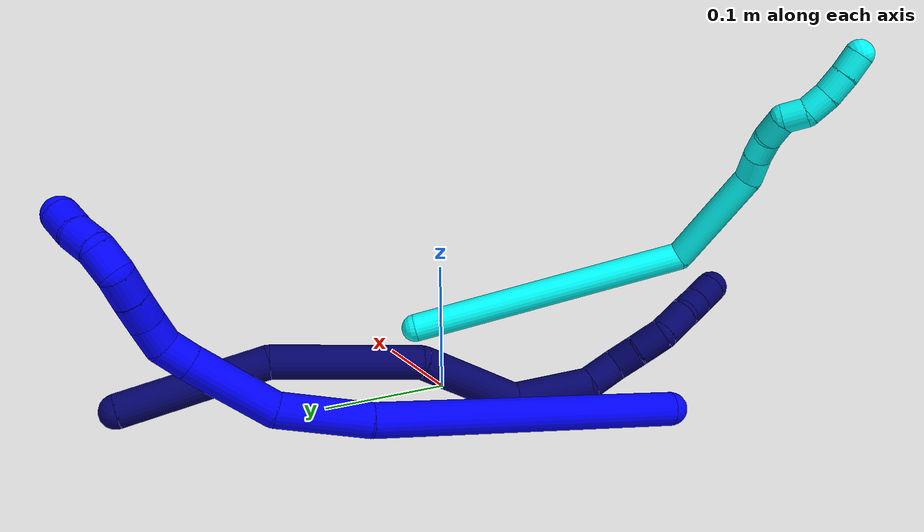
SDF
<sdf version="1.7">
 <world name="default">
  <model name="photoneo_s_sensor">
   <static>1</static>
   <pose>0 0 2 1.57079 1.57079 3.14159</pose>
   <link name="link">
    <inertial><mass>0.1</mass></inertial>
    <sensor name="sensor" type="depth">
     <update_rate>30</update_rate>
     <camera>
      <horizontal_fov>1.22</horizontal_fov>
      <image><width>1920</width><height>1200</height><format>B8G8R8</format></image>
      <clip><near>0.1</near><far>4</far></clip>
      <depth_camera><output>points</output></depth_camera>
     </camera>
     <plugin name="camera_plugin" filename="libgazebo_ros_depth_camera.so">
      <baseline>0.2</baseline>
      <alwaysOn>1</alwaysOn>
      <updateRate>0.0</updateRate>
      <cameraName>camera_ir</cameraName>
      <imageTopicName>/camera/color/image_raw</imageTopicName>
      <cameraInfoTopicName>/camera/color/camera_info</cameraInfoTopicName>
      <depthImageTopicName>/camera/depth/image_raw</depthImageTopicName>
      <depthImageCameraInfoTopicName>/camera/depth/camera_info</depthImageCameraInfoTopicName>
      <pointCloudTopicName>/camera/depth/points</pointCloudTopicName>
      <frameName>fr_optical</frameName>
      <pointCloudCutoff>0.1</pointCloudCutoff>
      <pointCloudCutoffMax>2.0</pointCloudCutoffMax>
      <distortionK1>0</distortionK1>
      <distortionK2>0</distortionK2>
      <distortionK3>0</distortionK3>
      <distortionT1>0</distortionT1>
      <distortionT2>0</distortionT2>
      <CxPrime>0</CxPrime>
      <Cx>0</Cx>
      <Cy>0</Cy>
      <focalLength>0</focalLength>
      <hackBaseline>0</hackBaseline>
     </plugin>
    </sensor>
   </link>
  </model>
  <model name="bin">
   <static>1</static>
   <link name="bottom">
    <collision name="collision-bottom">
     <pose>0 0 -0.01 0 -0 0</pose>
     <geometry><box><size>0.8 0.6 0.02</size></box></geometry>
     <surface>
      <friction><ode><mu>100</mu><mu2>100</mu2></ode></friction>
      <contact><collide_bitmask>65535</collide_bitmask></contact>
     </surface>
    </collision>
   </link>
   <link name="west_wall">
    <collision name="collision-west_wall">
     <pose>-0.41 0 0.1 0 -0 0</pose>
     <geometry><box><size>0.02 0.6 0.2</size></box></geometry>
     <surface>
      <friction><ode><mu>100</mu><mu2>100</mu2></ode></friction>
      <contact><collide_bitmask>65535</collide_bitmask></contact>
     </surface>
    </collision>
   </link>
   <link name="east_wall">
    <collision name="collision-east_wall">
     <pose>0.41 0 0.1 0 -0 0</pose>
     <geometry><box><size>0.02 0.6 0.2</size></box></geometry>
     <surface>
      <friction><ode><mu>100</mu><mu2>100</mu2></ode></friction>
      <contact><collide_bitmask>65535</collide_bitmask></contact>
     </surface>
    </collision>
   </link>
   <link name="south_wall">
    <collision name="collision-south_wall">
     <pose>0 -0.31 0.1 0 -0 0</pose>
     <geometry><box><size>0.8 0.02 0.2</size></box></geometry>
     <surface>
      <friction><ode><mu>100</mu><mu2>100</mu2></ode></friction>
      <contact><collide_bitmask>65535</collide_bitmask></contact>
     </surface>
    </collision>
   </link>
   <link name="north_wall">
    <collision name="collision-north_wall">
     <pose>0 0.31 0.1 0 -0 0</pose>
     <geometry><box><size>0.8 0.02 0.2</size></box></geometry>
     <surface>
      <friction><ode><mu>100</mu><mu2>100</mu2></ode></friction>
      <contact><collide_bitmask>65535</collide_bitmask></contact>
     </surface>
    </collision>
   </link>
  </model>
  <model name="1">
   <static>0</static>
   <link name="1">
    <collision name="collision-cylinder-e_1_1_4">
     <pose>0.008183 0.075873 0.084236 -0.733217 0.072059 -0.027678</pose>
     <geometry><cylinder><radius>0.0125</radius><length>0.227327</length></cylinder></geometry>
     <surface>
      <friction><ode><mu>1.16</mu><mu2>1.16</mu2><slip1>0</slip1><slip2>0</slip2></ode></friction>
      <contact><ode><kp>1e+06</kp><kd>1</kd><max_vel>0</max_vel><min_depth>0.001</min_depth></ode></contact>
     </surface>
    </collision>
    <visual name="visual-cylinder-e_1_1_4">
     <pose>0.008183 0.075873 0.084236 -0.733217 0.072059 -0.027678</pose>
     <geometry><cylinder><radius>0.0125</radius><length>0.227327</length></cylinder></geometry>
     <material><ambient>0 0 1 1</ambient></material>
    </visual>
    <collision name="collision-cylinder-e_2_4_5">
     <pose>0.023645 0.172457 0.193412 -0.692995 0.22086 -0.080028</pose>
     <geometry><cylinder><radius>0.0125</radius><length>0.066451</length></cylinder></geometry>
     <surface>
      <friction><ode><mu>1.16</mu><mu2>1.16</mu2><slip1>0</slip1><slip2>0</slip2></ode></friction>
      <contact><ode><kp>1e+06</kp><kd>1</kd><max_vel>0</max_vel><min_depth>0.001</min_depth></ode></contact>
     </surface>
    </collision>
    <visual name="visual-cylinder-e_2_4_5">
     <pose>0.023645 0.172457 0.193412 -0.692995 0.22086 -0.080028</pose>
     <geometry><cylinder><radius>0.0125</radius><length>0.066451</length></cylinder></geometry>
     <material><ambient>0 0 1 1</ambient></material>
    </visual>
    <collision name="collision-cylinder-e_3_5_6">
     <pose>0.044425 0.202302 0.246713 -0.311606 0.425449 -0.067828</pose>
     <geometry><cylinder><radius>0.0125</radius><length>0.065422</length></cylinder></geometry>
     <surface>
      <friction><ode><mu>1.16</mu><mu2>1.16</mu2><slip1>0</slip1><slip2>0</slip2></ode></friction>
      <contact><ode><kp>1e+06</kp><kd>1</kd><max_vel>0</max_vel><min_depth>0.001</min_depth></ode></contact>
     </surface>
    </collision>
    <visual name="visual-cylinder-e_3_5_6">
     <pose>0.044425 0.202302 0.246713 -0.311606 0.425449 -0.067828</pose>
     <geometry><cylinder><radius>0.0125</radius><length>0.065422</length></cylinder></geometry>
     <material><ambient>0 0 1 1</ambient></material>
    </visual>
    <collision name="collision-cylinder-e_4_6_7">
     <pose>0.062314 0.213725 0.284144 -0.247089 0.43858 -0.055338</pose>
     <geometry><cylinder><radius>0.0125</radius><length>0.020666</length></cylinder></geometry>
     <surface>
      <friction><ode><mu>1.16</mu><mu2>1.16</mu2><slip1>0</slip1><slip2>0</slip2></ode></friction>
      <contact><ode><kp>1e+06</kp><kd>1</kd><max_vel>0</max_vel><min_depth>0.001</min_depth></ode></contact>
     </surface>
    </collision>
    <visual name="visual-cylinder-e_4_6_7">
     <pose>0.062314 0.213725 0.284144 -0.247089 0.43858 -0.055338</pose>
     <geometry><cylinder><radius>0.0125</radius><length>0.020666</length></cylinder></geometry>
     <material><ambient>0 0 1 1</ambient></material>
    </visual>
    <collision name="collision-cylinder-e_5_7_8">
     <pose>0.070782 0.213727 0.302064 0.252811 0.4199 0.054147</pose>
     <geometry><cylinder><radius>0.0125</radius><length>0.020018</length></cylinder></geometry>
     <surface>
      <friction><ode><mu>1.16</mu><mu2>1.16</mu2><slip1>0</slip1><slip2>0</slip2></ode></friction>
      <contact><ode><kp>1e+06</kp><kd>1</kd><max_vel>0</max_vel><min_depth>0.001</min_depth></ode></contact>
     </surface>
    </collision>
    <visual name="visual-cylinder-e_5_7_8">
     <pose>0.070782 0.213727 0.302064 0.252811 0.4199 0.054147</pose>
     <geometry><cylinder><radius>0.0125</radius><length>0.020018</length></cylinder></geometry>
     <material><ambient>0 0 1 1</ambient></material>
    </visual>
    <collision name="collision-cylinder-e_6_8_9">
     <pose>0.077902 0.208444 0.320002 0.318514 0.307542 0.049779</pose>
     <geometry><cylinder><radius>0.0125</radius><length>0.020085</length></cylinder></geometry>
     <surface>
      <friction><ode><mu>1.16</mu><mu2>1.16</mu2><slip1>0</slip1><slip2>0</slip2></ode></friction>
      <contact><ode><kp>1e+06</kp><kd>1</kd><max_vel>0</max_vel><min_depth>0.001</min_depth></ode></contact>
     </surface>
    </collision>
    <visual name="visual-cylinder-e_6_8_9">
     <pose>0.077902 0.208444 0.320002 0.318514 0.307542 0.049779</pose>
     <geometry><cylinder><radius>0.0125</radius><length>0.020085</length></cylinder></geometry>
     <material><ambient>0 0 1 1</ambient></material>
    </visual>
    <collision name="collision-cylinder-e_7_9_10">
     <pose>0.084351 0.202309 0.337958 0.340158 0.347719 0.060307</pose>
     <geometry><cylinder><radius>0.0125</radius><length>0.020006</length></cylinder></geometry>
     <surface>
      <friction><ode><mu>1.16</mu><mu2>1.16</mu2><slip1>0</slip1><slip2>0</slip2></ode></friction>
      <contact><ode><kp>1e+06</kp><kd>1</kd><max_vel>0</max_vel><min_depth>0.001</min_depth></ode></contact>
     </surface>
    </collision>
    <visual name="visual-cylinder-e_7_9_10">
     <pose>0.084351 0.202309 0.337958 0.340158 0.347719 0.060307</pose>
     <geometry><cylinder><radius>0.0125</radius><length>0.020006</length></cylinder></geometry>
     <material><ambient>0 0 1 1</ambient></material>
    </visual>
    <collision name="collision-cylinder-e_8_10_11">
     <pose>0.095173 0.199823 0.353508 -0.097175 0.834697 -0.043114</pose>
     <geometry><cylinder><radius>0.0125</radius><length>0.020007</length></cylinder></geometry>
     <surface>
      <friction><ode><mu>1.16</mu><mu2>1.16</mu2><slip1>0</slip1><slip2>0</slip2></ode></friction>
      <contact><ode><kp>1e+06</kp><kd>1</kd><max_vel>0</max_vel><min_depth>0.001</min_depth></ode></contact>
     </surface>
    </collision>
    <visual name="visual-cylinder-e_8_10_11">
     <pose>0.095173 0.199823 0.353508 -0.097175 0.834697 -0.043114</pose>
     <geometry><cylinder><radius>0.0125</radius><length>0.020007</length></cylinder></geometry>
     <material><ambient>0 0 1 1</ambient></material>
    </visual>
    <collision name="collision-cylinder-e_9_11_12">
     <pose>0.110836 0.204952 0.363649 -0.91335 0.96976 -0.50656</pose>
     <geometry><cylinder><radius>0.0125</radius><length>0.020003</length></cylinder></geometry>
     <surface>
      <friction><ode><mu>1.16</mu><mu2>1.16</mu2><slip1>0</slip1><slip2>0</slip2></ode></friction>
      <contact><ode><kp>1e+06</kp><kd>1</kd><max_vel>0</max_vel><min_depth>0.001</min_depth></ode></contact>
     </surface>
    </collision>
    <visual name="visual-cylinder-e_9_11_12">
     <pose>0.110836 0.204952 0.363649 -0.91335 0.96976 -0.50656</pose>
     <geometry><cylinder><radius>0.0125</radius><length>0.020003</length></cylinder></geometry>
     <material><ambient>0 0 1 1</ambient></material>
    </visual>
    <collision name="collision-cylinder-e_10_12_2">
     <pose>0.128168 0.213078 0.369181 -1.05378 1.13782 -0.712255</pose>
     <geometry><cylinder><radius>0.0125</radius><length>0.020014</length></cylinder></geometry>
     <surface>
      <friction><ode><mu>1.16</mu><mu2>1.16</mu2><slip1>0</slip1><slip2>0</slip2></ode></friction>
      <contact><ode><kp>1e+06</kp><kd>1</kd><max_vel>0</max_vel><min_depth>0.001</min_depth></ode></contact>
     </surface>
    </collision>
    <visual name="visual-cylinder-e_10_12_2">
     <pose>0.128168 0.213078 0.369181 -1.05378 1.13782 -0.712255</pose>
     <geometry><cylinder><radius>0.0125</radius><length>0.020014</length></cylinder></geometry>
     <material><ambient>0 0 1 1</ambient></material>
    </visual>
    <collision name="collision-sphere-2">
     <pose>0.137252 0.216728 0.371256 0 -0 0</pose>
     <geometry><sphere><radius>0.0125</radius></sphere></geometry>
     <surface>
      <friction><ode><mu>1.16</mu><mu2>1.16</mu2><slip1>0</slip1><slip2>0</slip2></ode></friction>
      <contact><ode><kp>1e+06</kp><kd>1</kd><max_vel>0</max_vel><min_depth>0.001</min_depth></ode></contact>
     </surface>
    </collision>
    <visual name="visual-sphere-2">
     <pose>0.137252 0.216728 0.371256 0 -0 0</pose>
     <geometry><sphere><radius>0.0125</radius></sphere></geometry>
     <material><ambient>0 0 1 1</ambient></material>
    </visual>
    <collision name="collision-sphere-12">
     <pose>0.119085 0.209429 0.367106 0 -0 0</pose>
     <geometry><sphere><radius>0.0125</radius></sphere></geometry>
     <surface>
      <friction><ode><mu>1.16</mu><mu2>1.16</mu2><slip1>0</slip1><slip2>0</slip2></ode></friction>
      <contact><ode><kp>1e+06</kp><kd>1</kd><max_vel>0</max_vel><min_depth>0.001</min_depth></ode></contact>
     </surface>
    </collision>
    <visual name="visual-sphere-12">
     <pose>0.119085 0.209429 0.367106 0 -0 0</pose>
     <geometry><sphere><radius>0.0125</radius></sphere></geometry>
     <material><ambient>0 0 1 1</ambient></material>
    </visual>
    <collision name="collision-sphere-11">
     <pose>0.102587 0.200475 0.360193 0 -0 0</pose>
     <geometry><sphere><radius>0.0125</radius></sphere></geometry>
     <surface>
      <friction><ode><mu>1.16</mu><mu2>1.16</mu2><slip1>0</slip1><slip2>0</slip2></ode></friction>
      <contact><ode><kp>1e+06</kp><kd>1</kd><max_vel>0</max_vel><min_depth>0.001</min_depth></ode></contact>
     </surface>
    </collision>
    <visual name="visual-sphere-11">
     <pose>0.102587 0.200475 0.360193 0 -0 0</pose>
     <geometry><sphere><radius>0.0125</radius></sphere></geometry>
     <material><ambient>0 0 1 1</ambient></material>
    </visual>
    <collision name="collision-sphere-10">
     <pose>0.087759 0.199171 0.346823 0 -0 0</pose>
     <geometry><sphere><radius>0.0125</radius></sphere></geometry>
     <surface>
      <friction><ode><mu>1.16</mu><mu2>1.16</mu2><slip1>0</slip1><slip2>0</slip2></ode></friction>
      <contact><ode><kp>1e+06</kp><kd>1</kd><max_vel>0</max_vel><min_depth>0.001</min_depth></ode></contact>
     </surface>
    </collision>
    <visual name="visual-sphere-10">
     <pose>0.087759 0.199171 0.346823 0 -0 0</pose>
     <geometry><sphere><radius>0.0125</radius></sphere></geometry>
     <material><ambient>0 0 1 1</ambient></material>
    </visual>
    <collision name="collision-sphere-9">
     <pose>0.080942 0.205447 0.329092 0 -0 0</pose>
     <geometry><sphere><radius>0.0125</radius></sphere></geometry>
     <surface>
      <friction><ode><mu>1.16</mu><mu2>1.16</mu2><slip1>0</slip1><slip2>0</slip2></ode></friction>
      <contact><ode><kp>1e+06</kp><kd>1</kd><max_vel>0</max_vel><min_depth>0.001</min_depth></ode></contact>
     </surface>
    </collision>
    <visual name="visual-sphere-9">
     <pose>0.080942 0.205447 0.329092 0 -0 0</pose>
     <geometry><sphere><radius>0.0125</radius></sphere></geometry>
     <material><ambient>0 0 1 1</ambient></material>
    </visual>
    <collision name="collision-sphere-4">
     <pose>0.016367 0.151747 0.168471 0 -0 0</pose>
     <geometry><sphere><radius>0.0125</radius></sphere></geometry>
     <surface>
      <friction><ode><mu>1.16</mu><mu2>1.16</mu2><slip1>0</slip1><slip2>0</slip2></ode></friction>
      <contact><ode><kp>1e+06</kp><kd>1</kd><max_vel>0</max_vel><min_depth>0.001</min_depth></ode></contact>
     </surface>
    </collision>
    <visual name="visual-sphere-4">
     <pose>0.016367 0.151747 0.168471 0 -0 0</pose>
     <geometry><sphere><radius>0.0125</radius></sphere></geometry>
     <material><ambient>0 0 1 1</ambient></material>
    </visual>
    <collision name="collision-sphere-1">
     <geometry><sphere><radius>0.0125</radius></sphere></geometry>
     <surface>
      <friction><ode><mu>1.16</mu><mu2>1.16</mu2><slip1>0</slip1><slip2>0</slip2></ode></friction>
      <contact><ode><kp>1e+06</kp><kd>1</kd><max_vel>0</max_vel><min_depth>0.001</min_depth></ode></contact>
     </surface>
    </collision>
    <visual name="visual-sphere-1">
     <geometry><sphere><radius>0.0125</radius></sphere></geometry>
     <material><ambient>0 0 1 1</ambient></material>
    </visual>
    <collision name="collision-sphere-8">
     <pose>0.074862 0.211441 0.310913 0 -0 0</pose>
     <geometry><sphere><radius>0.0125</radius></sphere></geometry>
     <surface>
      <friction><ode><mu>1.16</mu><mu2>1.16</mu2><slip1>0</slip1><slip2>0</slip2></ode></friction>
      <contact><ode><kp>1e+06</kp><kd>1</kd><max_vel>0</max_vel><min_depth>0.001</min_depth></ode></contact>
     </surface>
    </collision>
    <visual name="visual-sphere-8">
     <pose>0.074862 0.211441 0.310913 0 -0 0</pose>
     <geometry><sphere><radius>0.0125</radius></sphere></geometry>
     <material><ambient>0 0 1 1</ambient></material>
    </visual>
    <collision name="collision-sphere-5">
     <pose>0.030924 0.193168 0.218353 0 -0 0</pose>
     <geometry><sphere><radius>0.0125</radius></sphere></geometry>
     <surface>
      <friction><ode><mu>1.16</mu><mu2>1.16</mu2><slip1>0</slip1><slip2>0</slip2></ode></friction>
      <contact><ode><kp>1e+06</kp><kd>1</kd><max_vel>0</max_vel><min_depth>0.001</min_depth></ode></contact>
     </surface>
    </collision>
    <visual name="visual-sphere-5">
     <pose>0.030924 0.193168 0.218353 0 -0 0</pose>
     <geometry><sphere><radius>0.0125</radius></sphere></geometry>
     <material><ambient>0 0 1 1</ambient></material>
    </visual>
    <collision name="collision-sphere-6">
     <pose>0.057926 0.211437 0.275073 0 -0 0</pose>
     <geometry><sphere><radius>0.0125</radius></sphere></geometry>
     <surface>
      <friction><ode><mu>1.16</mu><mu2>1.16</mu2><slip1>0</slip1><slip2>0</slip2></ode></friction>
      <contact><ode><kp>1e+06</kp><kd>1</kd><max_vel>0</max_vel><min_depth>0.001</min_depth></ode></contact>
     </surface>
    </collision>
    <visual name="visual-sphere-6">
     <pose>0.057926 0.211437 0.275073 0 -0 0</pose>
     <geometry><sphere><radius>0.0125</radius></sphere></geometry>
     <material><ambient>0 0 1 1</ambient></material>
    </visual>
    <collision name="collision-sphere-7">
     <pose>0.066702 0.216013 0.293215 0 -0 0</pose>
     <geometry><sphere><radius>0.0125</radius></sphere></geometry>
     <surface>
      <friction><ode><mu>1.16</mu><mu2>1.16</mu2><slip1>0</slip1><slip2>0</slip2></ode></friction>
      <contact><ode><kp>1e+06</kp><kd>1</kd><max_vel>0</max_vel><min_depth>0.001</min_depth></ode></contact>
     </surface>
    </collision>
    <visual name="visual-sphere-7">
     <pose>0.066702 0.216013 0.293215 0 -0 0</pose>
     <geometry><sphere><radius>0.0125</radius></sphere></geometry>
     <material><ambient>0 0 1 1</ambient></material>
    </visual>
    <inertial>
     <pose>0.037963 0.142469 0.18997 0 -0 0</pose>
     <mass>0.5</mass>
     <inertia>
      <ixx>0.001021</ixx>
      <ixy>0</ixy>
      <ixz>0</ixz>
      <iyy>0.000776</iyy>
      <iyz>0</iyz>
      <izz>-0.000748</izz>
     </inertia>
    </inertial>
   </link>
   <pose>-0.152555 -0.115371 0.01149 -0.778622 -0.600688 -0.158133</pose>
  </model>
  <model name="3">
   <static>0</static>
   <link name="3">
    <collision name="collision-cylinder-e_1_1_4">
     <pose>-0.005545 0.000833 0.124143 -0.006708 -0.044636 0.00015</pose>
     <geometry><cylinder><radius>0.0125</radius><length>0.248539</length></cylinder></geometry>
     <surface>
      <friction><ode><mu>1.16</mu><mu2>1.16</mu2><slip1>0</slip1><slip2>0</slip2></ode></friction>
      <contact><ode><kp>1e+06</kp><kd>1</kd><max_vel>0</max_vel><min_depth>0.001</min_depth></ode></contact>
     </surface>
    </collision>
    <visual name="visual-cylinder-e_1_1_4">
     <pose>-0.005545 0.000833 0.124143 -0.006708 -0.044636 0.00015</pose>
     <geometry><cylinder><radius>0.0125</radius><length>0.248539</length></cylinder></geometry>
     <material><ambient>0.003922 1 0.996078 1</ambient></material>
    </visual>
    <collision name="collision-cylinder-e_2_4_5">
     <pose>-0.018086 -0.031378 0.282933 0.761704 -0.145101 -0.058184</pose>
     <geometry><cylinder><radius>0.0125</radius><length>0.096773</length></cylinder></geometry>
     <surface>
      <friction><ode><mu>1.16</mu><mu2>1.16</mu2><slip1>0</slip1><slip2>0</slip2></ode></friction>
      <contact><ode><kp>1e+06</kp><kd>1</kd><max_vel>0</max_vel><min_depth>0.001</min_depth></ode></contact>
     </surface>
    </collision>
    <visual name="visual-cylinder-e_2_4_5">
     <pose>-0.018086 -0.031378 0.282933 0.761704 -0.145101 -0.058184</pose>
     <geometry><cylinder><radius>0.0125</radius><length>0.096773</length></cylinder></geometry>
     <material><ambient>0.003922 1 0.996078 1</ambient></material>
    </visual>
    <collision name="collision-cylinder-e_3_5_6">
     <pose>-0.026798 -0.075691 0.322273 1.17625 -0.139624 -0.093191</pose>
     <geometry><cylinder><radius>0.0125</radius><length>0.024656</length></cylinder></geometry>
     <surface>
      <friction><ode><mu>1.16</mu><mu2>1.16</mu2><slip1>0</slip1><slip2>0</slip2></ode></friction>
      <contact><ode><kp>1e+06</kp><kd>1</kd><max_vel>0</max_vel><min_depth>0.001</min_depth></ode></contact>
     </surface>
    </collision>
    <visual name="visual-cylinder-e_3_5_6">
     <pose>-0.026798 -0.075691 0.322273 1.17625 -0.139624 -0.093191</pose>
     <geometry><cylinder><radius>0.0125</radius><length>0.024656</length></cylinder></geometry>
     <material><ambient>0.003922 1 0.996078 1</ambient></material>
    </visual>
    <collision name="collision-cylinder-e_4_6_7">
     <pose>-0.027043 -0.098331 0.330921 1.23601 0.121561 0.08647</pose>
     <geometry><cylinder><radius>0.0125</radius><length>0.024256</length></cylinder></geometry>
     <surface>
      <friction><ode><mu>1.16</mu><mu2>1.16</mu2><slip1>0</slip1><slip2>0</slip2></ode></friction>
      <contact><ode><kp>1e+06</kp><kd>1</kd><max_vel>0</max_vel><min_depth>0.001</min_depth></ode></contact>
     </surface>
    </collision>
    <visual name="visual-cylinder-e_4_6_7">
     <pose>-0.027043 -0.098331 0.330921 1.23601 0.121561 0.08647</pose>
     <geometry><cylinder><radius>0.0125</radius><length>0.024256</length></cylinder></geometry>
     <material><ambient>0.003922 1 0.996078 1</ambient></material>
    </visual>
    <collision name="collision-cylinder-e_5_7_8">
     <pose>-0.02463 -0.11956 0.341117 1.00643 0.080607 0.04439</pose>
     <geometry><cylinder><radius>0.0125</radius><length>0.023412</length></cylinder></geometry>
     <surface>
      <friction><ode><mu>1.16</mu><mu2>1.16</mu2><slip1>0</slip1><slip2>0</slip2></ode></friction>
      <contact><ode><kp>1e+06</kp><kd>1</kd><max_vel>0</max_vel><min_depth>0.001</min_depth></ode></contact>
     </surface>
    </collision>
    <visual name="visual-cylinder-e_5_7_8">
     <pose>-0.02463 -0.11956 0.341117 1.00643 0.080607 0.04439</pose>
     <geometry><cylinder><radius>0.0125</radius><length>0.023412</length></cylinder></geometry>
     <material><ambient>0.003922 1 0.996078 1</ambient></material>
    </visual>
    <collision name="collision-cylinder-e_6_8_9">
     <pose>-0.021752 -0.131891 0.356952 0.252169 0.19291 0.024528</pose>
     <geometry><cylinder><radius>0.0125</radius><length>0.020189</length></cylinder></geometry>
     <surface>
      <friction><ode><mu>1.16</mu><mu2>1.16</mu2><slip1>0</slip1><slip2>0</slip2></ode></friction>
      <contact><ode><kp>1e+06</kp><kd>1</kd><max_vel>0</max_vel><min_depth>0.001</min_depth></ode></contact>
     </surface>
    </collision>
    <visual name="visual-cylinder-e_6_8_9">
     <pose>-0.021752 -0.131891 0.356952 0.252169 0.19291 0.024528</pose>
     <geometry><cylinder><radius>0.0125</radius><length>0.020189</length></cylinder></geometry>
     <material><ambient>0.003922 1 0.996078 1</ambient></material>
    </visual>
    <collision name="collision-cylinder-e_7_9_10">
     <pose>-0.021934 -0.139175 0.375521 0.492141 -0.205007 -0.051659</pose>
     <geometry><cylinder><radius>0.0125</radius><length>0.020803</length></cylinder></geometry>
     <surface>
      <friction><ode><mu>1.16</mu><mu2>1.16</mu2><slip1>0</slip1><slip2>0</slip2></ode></friction>
      <contact><ode><kp>1e+06</kp><kd>1</kd><max_vel>0</max_vel><min_depth>0.001</min_depth></ode></contact>
     </surface>
    </collision>
    <visual name="visual-cylinder-e_7_9_10">
     <pose>-0.021934 -0.139175 0.375521 0.492141 -0.205007 -0.051659</pose>
     <geometry><cylinder><radius>0.0125</radius><length>0.020803</length></cylinder></geometry>
     <material><ambient>0.003922 1 0.996078 1</ambient></material>
    </visual>
    <collision name="collision-cylinder-e_8_10_11">
     <pose>-0.027076 -0.150206 0.392619 0.653467 -0.287368 -0.09798</pose>
     <geometry><cylinder><radius>0.0125</radius><length>0.021335</length></cylinder></geometry>
     <surface>
      <friction><ode><mu>1.16</mu><mu2>1.16</mu2><slip1>0</slip1><slip2>0</slip2></ode></friction>
      <contact><ode><kp>1e+06</kp><kd>1</kd><max_vel>0</max_vel><min_depth>0.001</min_depth></ode></contact>
     </surface>
    </collision>
    <visual name="visual-cylinder-e_8_10_11">
     <pose>-0.027076 -0.150206 0.392619 0.653467 -0.287368 -0.09798</pose>
     <geometry><cylinder><radius>0.0125</radius><length>0.021335</length></cylinder></geometry>
     <material><ambient>0.003922 1 0.996078 1</ambient></material>
    </visual>
    <collision name="collision-cylinder-e_9_11_2">
     <pose>-0.033681 -0.162456 0.407895 0.700488 -0.365638 -0.134873</pose>
     <geometry><cylinder><radius>0.0125</radius><length>0.020037</length></cylinder></geometry>
     <surface>
      <friction><ode><mu>1.16</mu><mu2>1.16</mu2><slip1>0</slip1><slip2>0</slip2></ode></friction>
      <contact><ode><kp>1e+06</kp><kd>1</kd><max_vel>0</max_vel><min_depth>0.001</min_depth></ode></contact>
     </surface>
    </collision>
    <visual name="visual-cylinder-e_9_11_2">
     <pose>-0.033681 -0.162456 0.407895 0.700488 -0.365638 -0.134873</pose>
     <geometry><cylinder><radius>0.0125</radius><length>0.020037</length></cylinder></geometry>
     <material><ambient>0.003922 1 0.996078 1</ambient></material>
    </visual>
    <collision name="collision-sphere-2">
     <pose>-0.037263 -0.168487 0.415048 0 -0 0</pose>
     <geometry><sphere><radius>0.0125</radius></sphere></geometry>
     <surface>
      <friction><ode><mu>1.16</mu><mu2>1.16</mu2><slip1>0</slip1><slip2>0</slip2></ode></friction>
      <contact><ode><kp>1e+06</kp><kd>1</kd><max_vel>0</max_vel><min_depth>0.001</min_depth></ode></contact>
     </surface>
    </collision>
    <visual name="visual-sphere-2">
     <pose>-0.037263 -0.168487 0.415048 0 -0 0</pose>
     <geometry><sphere><radius>0.0125</radius></sphere></geometry>
     <material><ambient>0.003922 1 0.996078 1</ambient></material>
    </visual>
    <collision name="collision-sphere-11">
     <pose>-0.030099 -0.156426 0.400742 0 -0 0</pose>
     <geometry><sphere><radius>0.0125</radius></sphere></geometry>
     <surface>
      <friction><ode><mu>1.16</mu><mu2>1.16</mu2><slip1>0</slip1><slip2>0</slip2></ode></friction>
      <contact><ode><kp>1e+06</kp><kd>1</kd><max_vel>0</max_vel><min_depth>0.001</min_depth></ode></contact>
     </surface>
    </collision>
    <visual name="visual-sphere-11">
     <pose>-0.030099 -0.156426 0.400742 0 -0 0</pose>
     <geometry><sphere><radius>0.0125</radius></sphere></geometry>
     <material><ambient>0.003922 1 0.996078 1</ambient></material>
    </visual>
    <collision name="collision-sphere-10">
     <pose>-0.024052 -0.143987 0.384497 0 -0 0</pose>
     <geometry><sphere><radius>0.0125</radius></sphere></geometry>
     <surface>
      <friction><ode><mu>1.16</mu><mu2>1.16</mu2><slip1>0</slip1><slip2>0</slip2></ode></friction>
      <contact><ode><kp>1e+06</kp><kd>1</kd><max_vel>0</max_vel><min_depth>0.001</min_depth></ode></contact>
     </surface>
    </collision>
    <visual name="visual-sphere-10">
     <pose>-0.024052 -0.143987 0.384497 0 -0 0</pose>
     <geometry><sphere><radius>0.0125</radius></sphere></geometry>
     <material><ambient>0.003922 1 0.996078 1</ambient></material>
    </visual>
    <collision name="collision-sphere-9">
     <pose>-0.019817 -0.134363 0.366546 0 -0 0</pose>
     <geometry><sphere><radius>0.0125</radius></sphere></geometry>
     <surface>
      <friction><ode><mu>1.16</mu><mu2>1.16</mu2><slip1>0</slip1><slip2>0</slip2></ode></friction>
      <contact><ode><kp>1e+06</kp><kd>1</kd><max_vel>0</max_vel><min_depth>0.001</min_depth></ode></contact>
     </surface>
    </collision>
    <visual name="visual-sphere-9">
     <pose>-0.019817 -0.134363 0.366546 0 -0 0</pose>
     <geometry><sphere><radius>0.0125</radius></sphere></geometry>
     <material><ambient>0.003922 1 0.996078 1</ambient></material>
    </visual>
    <collision name="collision-sphere-4">
     <pose>-0.01109 0.001666 0.248285 0 -0 0</pose>
     <geometry><sphere><radius>0.0125</radius></sphere></geometry>
     <surface>
      <friction><ode><mu>1.16</mu><mu2>1.16</mu2><slip1>0</slip1><slip2>0</slip2></ode></friction>
      <contact><ode><kp>1e+06</kp><kd>1</kd><max_vel>0</max_vel><min_depth>0.001</min_depth></ode></contact>
     </surface>
    </collision>
    <visual name="visual-sphere-4">
     <pose>-0.01109 0.001666 0.248285 0 -0 0</pose>
     <geometry><sphere><radius>0.0125</radius></sphere></geometry>
     <material><ambient>0.003922 1 0.996078 1</ambient></material>
    </visual>
    <collision name="collision-sphere-1">
     <geometry><sphere><radius>0.0125</radius></sphere></geometry>
     <surface>
      <friction><ode><mu>1.16</mu><mu2>1.16</mu2><slip1>0</slip1><slip2>0</slip2></ode></friction>
      <contact><ode><kp>1e+06</kp><kd>1</kd><max_vel>0</max_vel><min_depth>0.001</min_depth></ode></contact>
     </surface>
    </collision>
    <visual name="visual-sphere-1">
     <geometry><sphere><radius>0.0125</radius></sphere></geometry>
     <material><ambient>0.003922 1 0.996078 1</ambient></material>
    </visual>
    <collision name="collision-sphere-8">
     <pose>-0.023687 -0.129419 0.347358 0 -0 0</pose>
     <geometry><sphere><radius>0.0125</radius></sphere></geometry>
     <surface>
      <friction><ode><mu>1.16</mu><mu2>1.16</mu2><slip1>0</slip1><slip2>0</slip2></ode></friction>
      <contact><ode><kp>1e+06</kp><kd>1</kd><max_vel>0</max_vel><min_depth>0.001</min_depth></ode></contact>
     </surface>
    </collision>
    <visual name="visual-sphere-8">
     <pose>-0.023687 -0.129419 0.347358 0 -0 0</pose>
     <geometry><sphere><radius>0.0125</radius></sphere></geometry>
     <material><ambient>0.003922 1 0.996078 1</ambient></material>
    </visual>
    <collision name="collision-sphere-5">
     <pose>-0.025083 -0.064421 0.31758 0 -0 0</pose>
     <geometry><sphere><radius>0.0125</radius></sphere></geometry>
     <surface>
      <friction><ode><mu>1.16</mu><mu2>1.16</mu2><slip1>0</slip1><slip2>0</slip2></ode></friction>
      <contact><ode><kp>1e+06</kp><kd>1</kd><max_vel>0</max_vel><min_depth>0.001</min_depth></ode></contact>
     </surface>
    </collision>
    <visual name="visual-sphere-5">
     <pose>-0.025083 -0.064421 0.31758 0 -0 0</pose>
     <geometry><sphere><radius>0.0125</radius></sphere></geometry>
     <material><ambient>0.003922 1 0.996078 1</ambient></material>
    </visual>
    <collision name="collision-sphere-6">
     <pose>-0.028514 -0.086961 0.326965 0 -0 0</pose>
     <geometry><sphere><radius>0.0125</radius></sphere></geometry>
     <surface>
      <friction><ode><mu>1.16</mu><mu2>1.16</mu2><slip1>0</slip1><slip2>0</slip2></ode></friction>
      <contact><ode><kp>1e+06</kp><kd>1</kd><max_vel>0</max_vel><min_depth>0.001</min_depth></ode></contact>
     </surface>
    </collision>
    <visual name="visual-sphere-6">
     <pose>-0.028514 -0.086961 0.326965 0 -0 0</pose>
     <geometry><sphere><radius>0.0125</radius></sphere></geometry>
     <material><ambient>0.003922 1 0.996078 1</ambient></material>
    </visual>
    <collision name="collision-sphere-7">
     <pose>-0.025573 -0.109701 0.334876 0 -0 0</pose>
     <geometry><sphere><radius>0.0125</radius></sphere></geometry>
     <surface>
      <friction><ode><mu>1.16</mu><mu2>1.16</mu2><slip1>0</slip1><slip2>0</slip2></ode></friction>
      <contact><ode><kp>1e+06</kp><kd>1</kd><max_vel>0</max_vel><min_depth>0.001</min_depth></ode></contact>
     </surface>
    </collision>
    <visual name="visual-sphere-7">
     <pose>-0.025573 -0.109701 0.334876 0 -0 0</pose>
     <geometry><sphere><radius>0.0125</radius></sphere></geometry>
     <material><ambient>0.003922 1 0.996078 1</ambient></material>
    </visual>
    <inertial>
     <pose>-0.014339 -0.043796 0.227523 0 -0 0</pose>
     <mass>0.5</mass>
     <inertia>
      <ixx>0.001371</ixx>
      <ixy>0</ixy>
      <ixz>0</ixz>
      <iyy>0.001337</iyy>
      <iyz>0</iyz>
      <izz>0.000156</izz>
     </inertia>
    </inertial>
   </link>
   <pose>0.116743 -0.030437 0.012009 -1.29473 0.590467 2.84495</pose>
  </model>
  <model name="7">
   <static>0</static>
   <link name="7">
    <collision name="collision-cylinder-e_1_1_4">
     <pose>-0.022336 -0.039597 -0.028998 2.2029 -0.427092 -0.808136</pose>
     <geometry><cylinder><radius>0.0125</radius><length>0.107847</length></cylinder></geometry>
     <surface>
      <friction><ode><mu>1.16</mu><mu2>1.16</mu2><slip1>0</slip1><slip2>0</slip2></ode></friction>
      <contact><ode><kp>1e+06</kp><kd>1</kd><max_vel>0</max_vel><min_depth>0.001</min_depth></ode></contact>
     </surface>
    </collision>
    <visual name="visual-cylinder-e_1_1_4">
     <pose>-0.022336 -0.039597 -0.028998 2.2029 -0.427092 -0.808136</pose>
     <geometry><cylinder><radius>0.0125</radius><length>0.107847</length></cylinder></geometry>
     <material><ambient>0.003922 0 0.403922 1</ambient></material>
    </visual>
    <collision name="collision-cylinder-e_2_4_5">
     <pose>-0.052192 -0.118295 -0.096419 2.34744 -0.136315 -0.322734</pose>
     <geometry><cylinder><radius>0.0125</radius><length>0.110667</length></cylinder></geometry>
     <surface>
      <friction><ode><mu>1.16</mu><mu2>1.16</mu2><slip1>0</slip1><slip2>0</slip2></ode></friction>
      <contact><ode><kp>1e+06</kp><kd>1</kd><max_vel>0</max_vel><min_depth>0.001</min_depth></ode></contact>
     </surface>
    </collision>
    <visual name="visual-cylinder-e_2_4_5">
     <pose>-0.052192 -0.118295 -0.096419 2.34744 -0.136315 -0.322734</pose>
     <geometry><cylinder><radius>0.0125</radius><length>0.110667</length></cylinder></geometry>
     <material><ambient>0.003922 0 0.403922 1</ambient></material>
    </visual>
    <collision name="collision-cylinder-e_3_5_6">
     <pose>-0.047453 -0.187482 -0.15979 2.26311 0.303931 0.630175</pose>
     <geometry><cylinder><radius>0.0125</radius><length>0.081923</length></cylinder></geometry>
     <surface>
      <friction><ode><mu>1.16</mu><mu2>1.16</mu2><slip1>0</slip1><slip2>0</slip2></ode></friction>
      <contact><ode><kp>1e+06</kp><kd>1</kd><max_vel>0</max_vel><min_depth>0.001</min_depth></ode></contact>
     </surface>
    </collision>
    <visual name="visual-cylinder-e_3_5_6">
     <pose>-0.047453 -0.187482 -0.15979 2.26311 0.303931 0.630175</pose>
     <geometry><cylinder><radius>0.0125</radius><length>0.081923</length></cylinder></geometry>
     <material><ambient>0.003922 0 0.403922 1</ambient></material>
    </visual>
    <collision name="collision-cylinder-e_4_6_7">
     <pose>-0.04457 -0.239745 -0.203087 2.262 -0.314902 -0.650842</pose>
     <geometry><cylinder><radius>0.0125</radius><length>0.060545</length></cylinder></geometry>
     <surface>
      <friction><ode><mu>1.16</mu><mu2>1.16</mu2><slip1>0</slip1><slip2>0</slip2></ode></friction>
      <contact><ode><kp>1e+06</kp><kd>1</kd><max_vel>0</max_vel><min_depth>0.001</min_depth></ode></contact>
     </surface>
    </collision>
    <visual name="visual-cylinder-e_4_6_7">
     <pose>-0.04457 -0.239745 -0.203087 2.262 -0.314902 -0.650842</pose>
     <geometry><cylinder><radius>0.0125</radius><length>0.060545</length></cylinder></geometry>
     <material><ambient>0.003922 0 0.403922 1</ambient></material>
    </visual>
    <collision name="collision-cylinder-e_5_7_8">
     <pose>-0.060866 -0.273016 -0.225214 1.89904 -0.533333 -0.729112</pose>
     <geometry><cylinder><radius>0.0125</radius><length>0.027219</length></cylinder></geometry>
     <surface>
      <friction><ode><mu>1.16</mu><mu2>1.16</mu2><slip1>0</slip1><slip2>0</slip2></ode></friction>
      <contact><ode><kp>1e+06</kp><kd>1</kd><max_vel>0</max_vel><min_depth>0.001</min_depth></ode></contact>
     </surface>
    </collision>
    <visual name="visual-cylinder-e_5_7_8">
     <pose>-0.060866 -0.273016 -0.225214 1.89904 -0.533333 -0.729112</pose>
     <geometry><cylinder><radius>0.0125</radius><length>0.027219</length></cylinder></geometry>
     <material><ambient>0.003922 0 0.403922 1</ambient></material>
    </visual>
    <collision name="collision-cylinder-e_6_8_9">
     <pose>-0.076088 -0.288041 -0.234881 2.55293 -0.864761 -1.97925</pose>
     <geometry><cylinder><radius>0.0125</radius><length>0.021824</length></cylinder></geometry>
     <surface>
      <friction><ode><mu>1.16</mu><mu2>1.16</mu2><slip1>0</slip1><slip2>0</slip2></ode></friction>
      <contact><ode><kp>1e+06</kp><kd>1</kd><max_vel>0</max_vel><min_depth>0.001</min_depth></ode></contact>
     </surface>
    </collision>
    <visual name="visual-cylinder-e_6_8_9">
     <pose>-0.076088 -0.288041 -0.234881 2.55293 -0.864761 -1.97925</pose>
     <geometry><cylinder><radius>0.0125</radius><length>0.021824</length></cylinder></geometry>
     <material><ambient>0.003922 0 0.403922 1</ambient></material>
    </visual>
    <collision name="collision-cylinder-e_7_9_10">
     <pose>-0.092854 -0.297755 -0.246451 2.34737 -0.806858 -1.5884</pose>
     <geometry><cylinder><radius>0.0125</radius><length>0.023439</length></cylinder></geometry>
     <surface>
      <friction><ode><mu>1.16</mu><mu2>1.16</mu2><slip1>0</slip1><slip2>0</slip2></ode></friction>
      <contact><ode><kp>1e+06</kp><kd>1</kd><max_vel>0</max_vel><min_depth>0.001</min_depth></ode></contact>
     </surface>
    </collision>
    <visual name="visual-cylinder-e_7_9_10">
     <pose>-0.092854 -0.297755 -0.246451 2.34737 -0.806858 -1.5884</pose>
     <geometry><cylinder><radius>0.0125</radius><length>0.023439</length></cylinder></geometry>
     <material><ambient>0.003922 0 0.403922 1</ambient></material>
    </visual>
    <collision name="collision-cylinder-e_8_10_11">
     <pose>-0.108426 -0.314104 -0.253918 1.7382 -0.585742 -0.685392</pose>
     <geometry><cylinder><radius>0.0125</radius><length>0.02572</length></cylinder></geometry>
     <surface>
      <friction><ode><mu>1.16</mu><mu2>1.16</mu2><slip1>0</slip1><slip2>0</slip2></ode></friction>
      <contact><ode><kp>1e+06</kp><kd>1</kd><max_vel>0</max_vel><min_depth>0.001</min_depth></ode></contact>
     </surface>
    </collision>
    <visual name="visual-cylinder-e_8_10_11">
     <pose>-0.108426 -0.314104 -0.253918 1.7382 -0.585742 -0.685392</pose>
     <geometry><cylinder><radius>0.0125</radius><length>0.02572</length></cylinder></geometry>
     <material><ambient>0.003922 0 0.403922 1</ambient></material>
    </visual>
    <collision name="collision-cylinder-e_9_11_12">
     <pose>-0.118279 -0.334569 -0.255664 1.56679 -0.270441 -0.269372</pose>
     <geometry><cylinder><radius>0.0125</radius><length>0.020543</length></cylinder></geometry>
     <surface>
      <friction><ode><mu>1.16</mu><mu2>1.16</mu2><slip1>0</slip1><slip2>0</slip2></ode></friction>
      <contact><ode><kp>1e+06</kp><kd>1</kd><max_vel>0</max_vel><min_depth>0.001</min_depth></ode></contact>
     </surface>
    </collision>
    <visual name="visual-cylinder-e_9_11_12">
     <pose>-0.118279 -0.334569 -0.255664 1.56679 -0.270441 -0.269372</pose>
     <geometry><cylinder><radius>0.0125</radius><length>0.020543</length></cylinder></geometry>
     <material><ambient>0.003922 0 0.403922 1</ambient></material>
    </visual>
    <collision name="collision-cylinder-e_10_12_2">
     <pose>-0.126672 -0.352784 -0.256924 1.72582 -0.590964 -0.683414</pose>
     <geometry><cylinder><radius>0.0125</radius><length>0.020274</length></cylinder></geometry>
     <surface>
      <friction><ode><mu>1.16</mu><mu2>1.16</mu2><slip1>0</slip1><slip2>0</slip2></ode></friction>
      <contact><ode><kp>1e+06</kp><kd>1</kd><max_vel>0</max_vel><min_depth>0.001</min_depth></ode></contact>
     </surface>
    </collision>
    <visual name="visual-cylinder-e_10_12_2">
     <pose>-0.126672 -0.352784 -0.256924 1.72582 -0.590964 -0.683414</pose>
     <geometry><cylinder><radius>0.0125</radius><length>0.020274</length></cylinder></geometry>
     <material><ambient>0.003922 0 0.403922 1</ambient></material>
    </visual>
    <collision name="collision-sphere-2">
     <pose>-0.13232 -0.361101 -0.258224 0 -0 0</pose>
     <geometry><sphere><radius>0.0125</radius></sphere></geometry>
     <surface>
      <friction><ode><mu>1.16</mu><mu2>1.16</mu2><slip1>0</slip1><slip2>0</slip2></ode></friction>
      <contact><ode><kp>1e+06</kp><kd>1</kd><max_vel>0</max_vel><min_depth>0.001</min_depth></ode></contact>
     </surface>
    </collision>
    <visual name="visual-sphere-2">
     <pose>-0.13232 -0.361101 -0.258224 0 -0 0</pose>
     <geometry><sphere><radius>0.0125</radius></sphere></geometry>
     <material><ambient>0.003922 0 0.403922 1</ambient></material>
    </visual>
    <collision name="collision-sphere-12">
     <pose>-0.121024 -0.344467 -0.255624 0 -0 0</pose>
     <geometry><sphere><radius>0.0125</radius></sphere></geometry>
     <surface>
      <friction><ode><mu>1.16</mu><mu2>1.16</mu2><slip1>0</slip1><slip2>0</slip2></ode></friction>
      <contact><ode><kp>1e+06</kp><kd>1</kd><max_vel>0</max_vel><min_depth>0.001</min_depth></ode></contact>
     </surface>
    </collision>
    <visual name="visual-sphere-12">
     <pose>-0.121024 -0.344467 -0.255624 0 -0 0</pose>
     <geometry><sphere><radius>0.0125</radius></sphere></geometry>
     <material><ambient>0.003922 0 0.403922 1</ambient></material>
    </visual>
    <collision name="collision-sphere-11">
     <pose>-0.115535 -0.324671 -0.255703 0 -0 0</pose>
     <geometry><sphere><radius>0.0125</radius></sphere></geometry>
     <surface>
      <friction><ode><mu>1.16</mu><mu2>1.16</mu2><slip1>0</slip1><slip2>0</slip2></ode></friction>
      <contact><ode><kp>1e+06</kp><kd>1</kd><max_vel>0</max_vel><min_depth>0.001</min_depth></ode></contact>
     </surface>
    </collision>
    <visual name="visual-sphere-11">
     <pose>-0.115535 -0.324671 -0.255703 0 -0 0</pose>
     <geometry><sphere><radius>0.0125</radius></sphere></geometry>
     <material><ambient>0.003922 0 0.403922 1</ambient></material>
    </visual>
    <collision name="collision-sphere-10">
     <pose>-0.101317 -0.303538 -0.252132 0 -0 0</pose>
     <geometry><sphere><radius>0.0125</radius></sphere></geometry>
     <surface>
      <friction><ode><mu>1.16</mu><mu2>1.16</mu2><slip1>0</slip1><slip2>0</slip2></ode></friction>
      <contact><ode><kp>1e+06</kp><kd>1</kd><max_vel>0</max_vel><min_depth>0.001</min_depth></ode></contact>
     </surface>
    </collision>
    <visual name="visual-sphere-10">
     <pose>-0.101317 -0.303538 -0.252132 0 -0 0</pose>
     <geometry><sphere><radius>0.0125</radius></sphere></geometry>
     <material><ambient>0.003922 0 0.403922 1</ambient></material>
    </visual>
    <collision name="collision-sphere-9">
     <pose>-0.084391 -0.291972 -0.240769 0 -0 0</pose>
     <geometry><sphere><radius>0.0125</radius></sphere></geometry>
     <surface>
      <friction><ode><mu>1.16</mu><mu2>1.16</mu2><slip1>0</slip1><slip2>0</slip2></ode></friction>
      <contact><ode><kp>1e+06</kp><kd>1</kd><max_vel>0</max_vel><min_depth>0.001</min_depth></ode></contact>
     </surface>
    </collision>
    <visual name="visual-sphere-9">
     <pose>-0.084391 -0.291972 -0.240769 0 -0 0</pose>
     <geometry><sphere><radius>0.0125</radius></sphere></geometry>
     <material><ambient>0.003922 0 0.403922 1</ambient></material>
    </visual>
    <collision name="collision-sphere-4">
     <pose>-0.044673 -0.079193 -0.057997 0 -0 0</pose>
     <geometry><sphere><radius>0.0125</radius></sphere></geometry>
     <surface>
      <friction><ode><mu>1.16</mu><mu2>1.16</mu2><slip1>0</slip1><slip2>0</slip2></ode></friction>
      <contact><ode><kp>1e+06</kp><kd>1</kd><max_vel>0</max_vel><min_depth>0.001</min_depth></ode></contact>
     </surface>
    </collision>
    <visual name="visual-sphere-4">
     <pose>-0.044673 -0.079193 -0.057997 0 -0 0</pose>
     <geometry><sphere><radius>0.0125</radius></sphere></geometry>
     <material><ambient>0.003922 0 0.403922 1</ambient></material>
    </visual>
    <collision name="collision-sphere-1">
     <geometry><sphere><radius>0.0125</radius></sphere></geometry>
     <surface>
      <friction><ode><mu>1.16</mu><mu2>1.16</mu2><slip1>0</slip1><slip2>0</slip2></ode></friction>
      <contact><ode><kp>1e+06</kp><kd>1</kd><max_vel>0</max_vel><min_depth>0.001</min_depth></ode></contact>
     </surface>
    </collision>
    <visual name="visual-sphere-1">
     <geometry><sphere><radius>0.0125</radius></sphere></geometry>
     <material><ambient>0.003922 0 0.403922 1</ambient></material>
    </visual>
    <collision name="collision-sphere-8">
     <pose>-0.067785 -0.28411 -0.228992 0 -0 0</pose>
     <geometry><sphere><radius>0.0125</radius></sphere></geometry>
     <surface>
      <friction><ode><mu>1.16</mu><mu2>1.16</mu2><slip1>0</slip1><slip2>0</slip2></ode></friction>
      <contact><ode><kp>1e+06</kp><kd>1</kd><max_vel>0</max_vel><min_depth>0.001</min_depth></ode></contact>
     </surface>
    </collision>
    <visual name="visual-sphere-8">
     <pose>-0.067785 -0.28411 -0.228992 0 -0 0</pose>
     <geometry><sphere><radius>0.0125</radius></sphere></geometry>
     <material><ambient>0.003922 0 0.403922 1</ambient></material>
    </visual>
    <collision name="collision-sphere-5">
     <pose>-0.059712 -0.157397 -0.134842 0 -0 0</pose>
     <geometry><sphere><radius>0.0125</radius></sphere></geometry>
     <surface>
      <friction><ode><mu>1.16</mu><mu2>1.16</mu2><slip1>0</slip1><slip2>0</slip2></ode></friction>
      <contact><ode><kp>1e+06</kp><kd>1</kd><max_vel>0</max_vel><min_depth>0.001</min_depth></ode></contact>
     </surface>
    </collision>
    <visual name="visual-sphere-5">
     <pose>-0.059712 -0.157397 -0.134842 0 -0 0</pose>
     <geometry><sphere><radius>0.0125</radius></sphere></geometry>
     <material><ambient>0.003922 0 0.403922 1</ambient></material>
    </visual>
    <collision name="collision-sphere-6">
     <pose>-0.035194 -0.217568 -0.184739 0 -0 0</pose>
     <geometry><sphere><radius>0.0125</radius></sphere></geometry>
     <surface>
      <friction><ode><mu>1.16</mu><mu2>1.16</mu2><slip1>0</slip1><slip2>0</slip2></ode></friction>
      <contact><ode><kp>1e+06</kp><kd>1</kd><max_vel>0</max_vel><min_depth>0.001</min_depth></ode></contact>
     </surface>
    </collision>
    <visual name="visual-sphere-6">
     <pose>-0.035194 -0.217568 -0.184739 0 -0 0</pose>
     <geometry><sphere><radius>0.0125</radius></sphere></geometry>
     <material><ambient>0.003922 0 0.403922 1</ambient></material>
    </visual>
    <collision name="collision-sphere-7">
     <pose>-0.053946 -0.261922 -0.221436 0 -0 0</pose>
     <geometry><sphere><radius>0.0125</radius></sphere></geometry>
     <surface>
      <friction><ode><mu>1.16</mu><mu2>1.16</mu2><slip1>0</slip1><slip2>0</slip2></ode></friction>
      <contact><ode><kp>1e+06</kp><kd>1</kd><max_vel>0</max_vel><min_depth>0.001</min_depth></ode></contact>
     </surface>
    </collision>
    <visual name="visual-sphere-7">
     <pose>-0.053946 -0.261922 -0.221436 0 -0 0</pose>
     <geometry><sphere><radius>0.0125</radius></sphere></geometry>
     <material><ambient>0.003922 0 0.403922 1</ambient></material>
    </visual>
    <inertial>
     <pose>-0.056102 -0.180074 -0.146417 0 -0 0</pose>
     <mass>0.5</mass>
     <inertia>
      <ixx>0.000128</ixx>
      <ixy>0</ixy>
      <ixz>0</ixz>
      <iyy>-0.000243</iyy>
      <iyz>0</iyz>
      <izz>0.000262</izz>
     </inertia>
    </inertial>
   </link>
   <pose>-0.019038 0.258855 0.035926 0.18478 1.30763 0.676503</pose>
  </model>
 </world>
</sdf>
